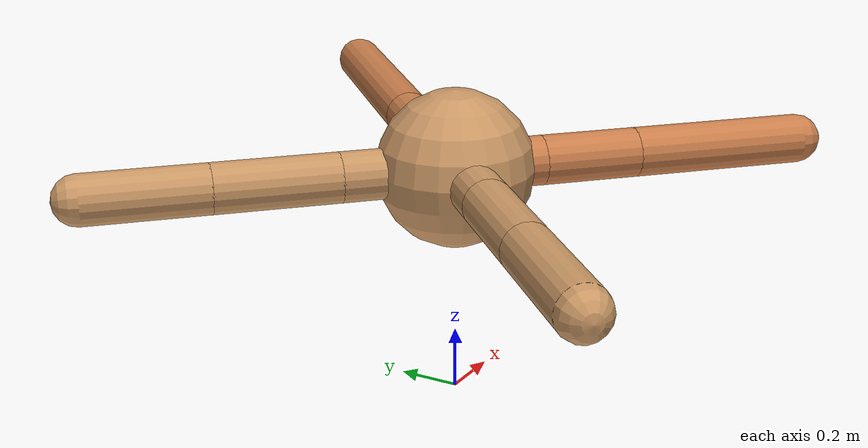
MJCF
<mujoco model="ant">
  <compiler angle="degree" coordinate="local" inertiafromgeom="true" />
  <option integrator="RK4" timestep="0.01" />
  <custom>
    <numeric data="0.0 0.0 0.55 1.0 0.0 0.0 0.0 0.0 1.0 0.0 -1.0 0.0 -1.0 0.0 1.0" name="init_qpos" />
  </custom>
  <default>
    <joint armature="1" damping="1" limited="true" />
    <geom conaffinity="0" condim="3" density="5.0" friction="1.5 0.1 0.1" margin="0.01" rgba="0.8 0.6 0.4 1" />
  </default>
  <worldbody>
    <body name="torso" pos="0 0 0.75">
      <geom name="torso_geom" pos="0 0 0" size="0.25" type="sphere" />

      <body name="front_left_leg" pos="0 0 0">
        <geom fromto="0.0 0.0 0.0 0.2 0.2 0.0" name="aux_1_geom" size="0.08" type="capsule" rgba=".8 .5 .3 1" />
        <body name="aux_1" pos="0.2 0.2 0.0">
          <joint axis="0 0 1" name="hip_1" pos="0.0 0.0 0.0" range="-40 40" type="hinge" />
          <geom fromto="0.0 0.0 0.0 0.22867648014432432 0.22867648014432432 0.0" name="left_leg_geom" size="0.08" type="capsule" rgba=".8 .5 .3 1" />
          <body pos="0.22867648014432432 0.22867648014432432 0.0" name="front_left_foot">
            <joint axis="-1 1 0" name="ankle_1" pos="0.0 0.0 0.0" range="30 100" type="hinge" />
            <geom fromto="0.0 0.0 0.0 0.5741080270543081 0.5741080270543081 0.0" name="left_ankle_geom" size="0.08" type="capsule" rgba=".8 .5 .3 1" />
          </body>
        </body>
      </body>
      <body name="front_right_leg" pos="0 0 0">
        <geom fromto="0.0 0.0 0.0 -0.2579685187888674 0.2579685187888674 0.0" name="aux_2_geom" size="0.08" type="capsule" />
        <body name="aux_2" pos="-0.2579685187888674 0.2579685187888674 0.0">
          <joint axis="0 0 1" name="hip_2" pos="0.0 0.0 0.0" range="-40 40" type="hinge" />
          <geom fromto="0.0 0.0 0.0 -0.27836030237294296 0.27836030237294296 0.0" name="right_leg_geom" size="0.08" type="capsule" />
          <body pos="-0.27836030237294296 0.27836030237294296 0.0" name="front_right_foot">
            <joint axis="1 1 0" name="ankle_2" pos="0.0 0.0 0.0" range="-100 -30" type="hinge" />
            <geom fromto="0.0 0.0 0.0 -0.2746132920562522 0.2746132920562522 0.0" name="right_ankle_geom" size="0.08" type="capsule" />
          </body>
        </body>
      </body>
      <body name="left_back_leg" pos="0 0 0">
        <geom fromto="0.0 0.0 0.0 -0.25440255908163417 -0.25440255908163417 0.0" name="aux_3_geom" size="0.08" type="capsule" />
        <body name="aux_3" pos="-0.25440255908163417 -0.25440255908163417 0.0">
          <joint axis="0 0 1" name="hip_3" pos="0.0 0.0 0.0" range="-40 40" type="hinge" />
          <geom fromto="0.0 0.0 0.0 -0.2604421906028857 -0.2604421906028857 0.0" name="back_leg_geom" size="0.08" type="capsule" />
          <body pos="-0.2604421906028857 -0.2604421906028857 0.0" name="left_back_foot">
            <joint axis="-1 1 0" name="ankle_3" pos="0.0 0.0 0.0" range="-100 -30" type="hinge" />
            <geom fromto="0.0 0.0 0.0 -0.31070278090242853 -0.31070278090242853 0.0" name="third_ankle_geom" size="0.08" type="capsule" />
          </body>
        </body>
      </body>
      <body name="right_back_leg" pos="0 0 0">
        <geom fromto="0.0 0.0 0.0 0.2 -0.2 0.0" name="aux_4_geom" size="0.08" type="capsule" rgba=".8 .5 .3 1" />
        <body name="aux_4" pos="0.2 -0.2 0.0">
          <joint axis="0 0 1" name="hip_4" pos="0.0 0.0 0.0" range="-40 40" type="hinge" />
          <geom fromto="0.0 0.0 0.0 0.2208209458929556 -0.2208209458929556 0.0" name="rightback_leg_geom" size="0.08" type="capsule" rgba=".8 .5 .3 1" />
          <body pos="0.2208209458929556 -0.2208209458929556 0.0" name="right_back_foot">
            <joint axis="1 1 0" name="ankle_4" pos="0.0 0.0 0.0" range="30 100" type="hinge" />
            <geom fromto="0.0 0.0 0.0 0.4009495339989032 -0.4009495339989032 0.0" name="fourth_ankle_geom" size="0.08" type="capsule" rgba=".8 .5 .3 1" />
          </body>
        </body>
      </body>
    </body>
  </worldbody>
  <actuator>
    <motor ctrllimited="true" ctrlrange="-1.0 1.0" joint="hip_4" gear="150" />
    <motor ctrllimited="true" ctrlrange="-1.0 1.0" joint="ankle_4" gear="150" />
    <motor ctrllimited="true" ctrlrange="-1.0 1.0" joint="hip_1" gear="150" />
    <motor ctrllimited="true" ctrlrange="-1.0 1.0" joint="ankle_1" gear="150" />
    <motor ctrllimited="true" ctrlrange="-1.0 1.0" joint="hip_2" gear="150" />
    <motor ctrllimited="true" ctrlrange="-1.0 1.0" joint="ankle_2" gear="150" />
    <motor ctrllimited="true" ctrlrange="-1.0 1.0" joint="hip_3" gear="150" />
    <motor ctrllimited="true" ctrlrange="-1.0 1.0" joint="ankle_3" gear="150" />
  </actuator>
</mujoco>
